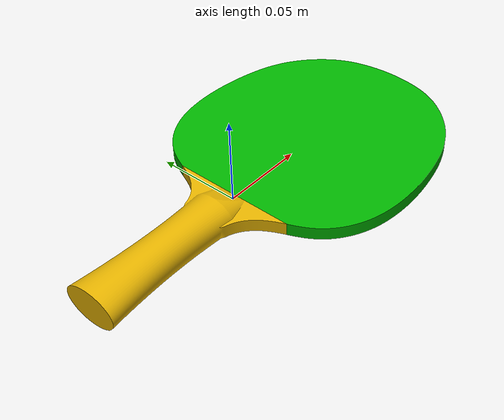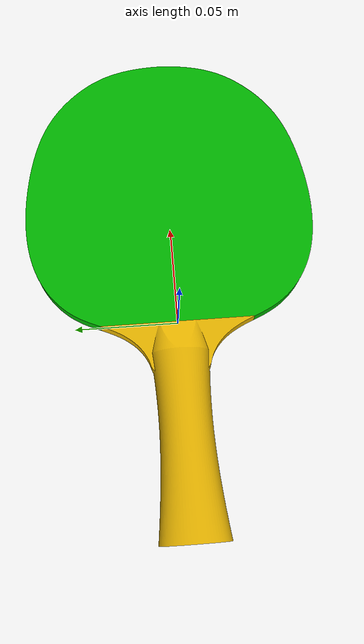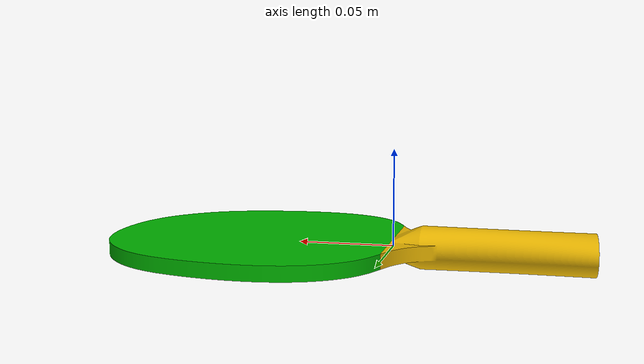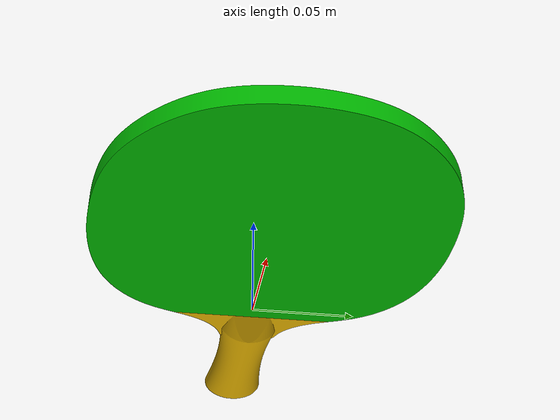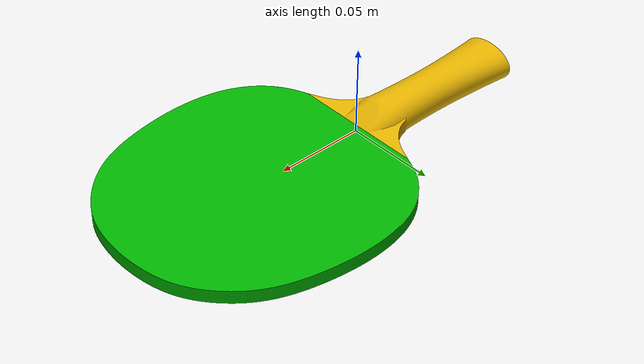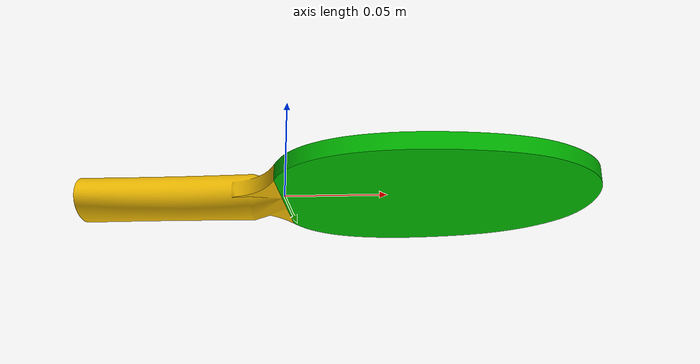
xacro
<?xml version="1.0"?>
<robot name="paddle" xmlns:xacro="http://www.ros.org/wiki/xacro">

  <link name="object"/>

  <material name="green">
    <color rgba="0 0.7 0 1"/>
  </material>

  <material name="yellow">
    <color rgba="0.9 0.7 0 1"/>
  </material>

  <link name="paddle_handle">
    <visual name="paddle_handle_visual">
      <origin xyz="0.0 0.0 0.0" rpy="1.570796327 0.0 0.0"/>
        <geometry>
          <mesh filename="package://optical_marker_tracking/meshes/paddle_handle.STL" scale="0.001 0.001 0.001"/>
        </geometry>
        <material name="yellow"/>
    </visual>

    <inertial name="paddle_handle_inertial">
      <origin xyz="0.07117239 -0.00000193 -0.00000231" rpy="1.570796327 0.0 0.0"/>
      <mass value="0.02"/>
      <inertia ixx="0.00002890" ixy="0.0" ixz="0.0" iyy="0.00005966" iyz="0.0" izz="0.00003095"/>
    </inertial>

    <collision name="paddle_handle_collision">
      <origin xyz="0.0 0.0 0.0" rpy="1.570796327 0.0 0.0"/>
      <geometry>
          <mesh filename="package://optical_marker_tracking/meshes/paddle_handle.STL" scale="0.001 0.001 0.001"/>
      </geometry>
    </collision>
  </link>

  <link name="paddle_rubber">
    <visual name="paddle_rubber_visual">
      <origin xyz="0.0 0.0 0.0" rpy="1.570796327 0.0 0.0"/>
        <geometry>
          <mesh filename="package://optical_marker_tracking/meshes/paddle_rubber.STL" scale="0.001 0.001 0.001"/>
        </geometry>
        <material name="green"/>
    </visual>

    <inertial name="paddle_rubber_inertial">
      <origin xyz="0.07117239 -0.00000193 -0.00000231" rpy="1.570796327 0.0 0.0"/>
      <mass value="0.02"/>
      <inertia ixx="0.00002890" ixy="0.0" ixz="0.0" iyy="0.00005966" iyz="0.0" izz="0.00003095"/>
    </inertial>

    <collision name="paddle_rubber_collision">
      <origin xyz="0.0 0.0 0.0" rpy="1.570796327 0.0 0.0"/>
      <geometry>
          <mesh filename="package://optical_marker_tracking/meshes/paddle_rubber.STL" scale="0.001 0.001 0.001"/>
      </geometry>
    </collision>
  </link>

  <joint name="base_joint" type="fixed">
    <parent link="object"/>
    <child link="paddle_handle"/>
    <origin xyz="-0.1 0 0" rpy="0 0 0"/>
  </joint>

  <joint name="paddle_joint" type="fixed">
    <parent link="paddle_handle"/>
    <child link="paddle_rubber"/>
    <origin xyz="0.1 0.0 0.0" rpy="0 0 0"/>
  </joint>

</robot>
